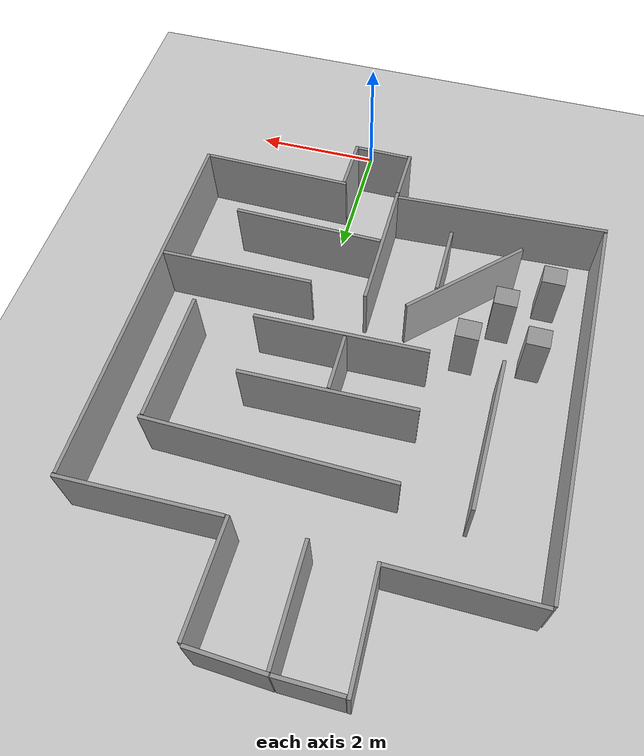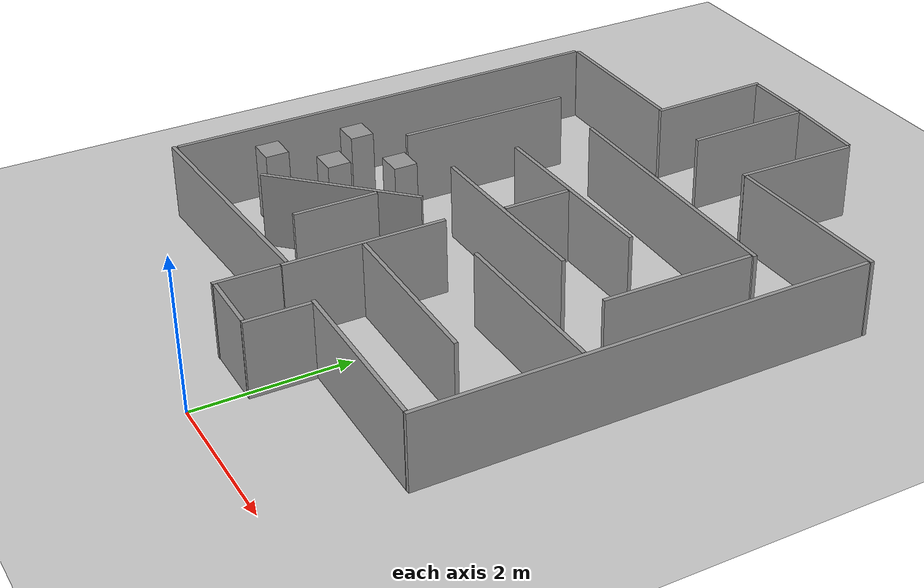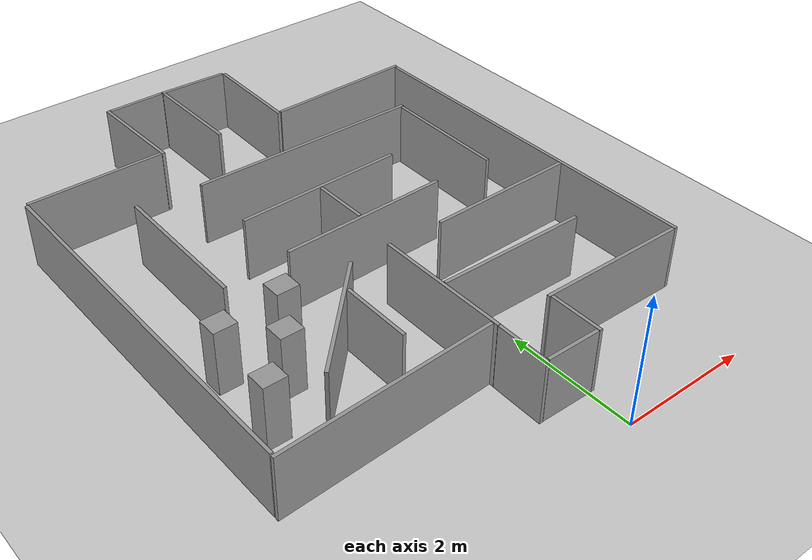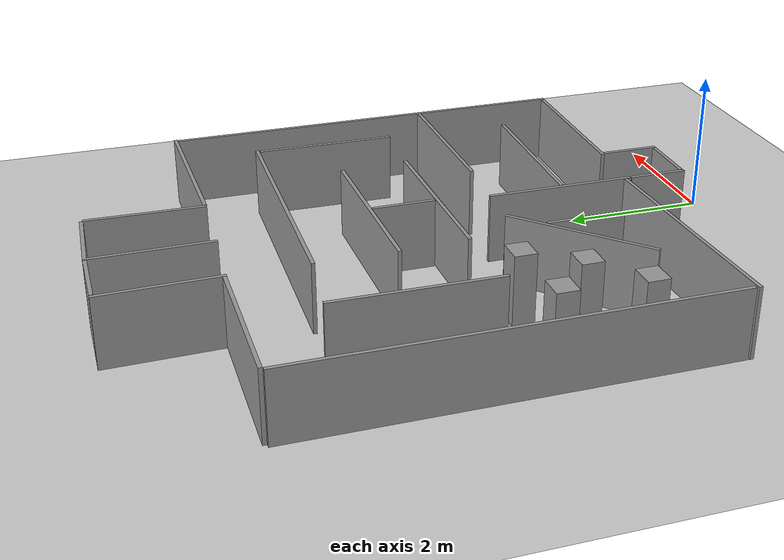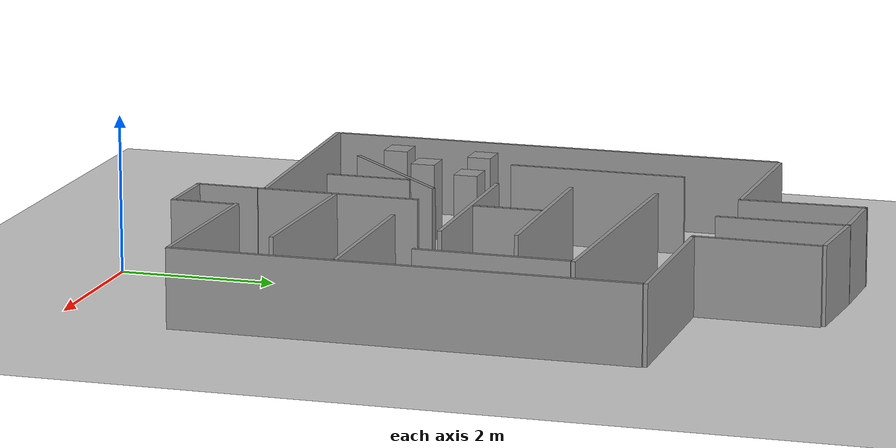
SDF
<sdf version="1.6">
 <world name="default">
  <light name="sun" type="directional">
   <pose>0 0 10 0 -0 0</pose>
   <diffuse>0.8 0.8 0.8 1</diffuse>
   <specular>0.1 0.1 0.1 1</specular>
   <attenuation>
    <range>1000</range>
    <constant>0.9</constant>
    <linear>0.01</linear>
    <quadratic>0.001</quadratic>
   </attenuation>
   <direction>-0.5 0.5 -1</direction>
  </light>
  <model name="ground_plane">
   <static>1</static>
   <link name="link">
    <collision name="collision">
     <geometry><plane><normal>0 0 1</normal><size>100 100</size></plane></geometry>
     <surface><friction><ode><mu>100</mu><mu2>50</mu2></ode></friction></surface>
    </collision>
    <visual name="visual">
     <cast_shadows>0</cast_shadows>
     <geometry><plane><normal>0 0 1</normal><size>100 100</size></plane></geometry>
     <material>
      <script><uri>file://media/materials/scripts/gazebo.material</uri><name>Gazebo/Grey</name></script>
     </material>
    </visual>
   </link>
  </model>
  <gravity>0 0 -9.8</gravity>
  <magnetic_field>6e-06 2.3e-05 -4.2e-05</magnetic_field>
  <atmosphere type="adiabatic"/>
  <physics name="default_physics" default="0" type="ode">
   <max_step_size>0.001</max_step_size>
   <real_time_factor>1</real_time_factor>
   <real_time_update_rate>1000</real_time_update_rate>
  </physics>
  <scene><ambient>0.4 0.4 0.4 1</ambient><background>0.7 0.7 0.7 1</background><shadows>1</shadows></scene>
  <spherical_coordinates>
   <surface_model>EARTH_WGS84</surface_model>
   <latitude_deg>0</latitude_deg>
   <longitude_deg>0</longitude_deg>
   <elevation>0</elevation>
   <heading_deg>0</heading_deg>
  </spherical_coordinates>
  <model name="unit_box_0">
   <pose>-1.02773 8.18581 0.5 0 -8e-06 0.00631</pose>
   <static>true</static>
   <link name="link">
    <inertial>
     <mass>1</mass>
     <inertia>
      <ixx>0.166667</ixx>
      <ixy>0</ixy>
      <ixz>0</ixz>
      <iyy>0.166667</iyy>
      <iyz>0</iyz>
      <izz>0.166667</izz>
     </inertia>
    </inertial>
    <collision name="collision"><geometry><box><size>0.0517235 1.62363 1</size></box></geometry></collision>
    <visual name="visual">
     <geometry><box><size>0.0517235 1.62363 1</size></box></geometry>
     <material>
      <script><name>Gazebo/Grey</name><uri>file://media/materials/scripts/gazebo.material</uri></script>
     </material>
    </visual>
   </link>
  </model>
  <model name="unit_box_0_clone">
   <pose>0.051503 8.14796 0.5 -0 -1e-06 -0.021205</pose>
   <static>true</static>
   <link name="link">
    <inertial>
     <mass>1</mass>
     <inertia>
      <ixx>0.166667</ixx>
      <ixy>0</ixy>
      <ixz>0</ixz>
      <iyy>0.166667</iyy>
      <iyz>0</iyz>
      <izz>0.166667</izz>
     </inertia>
    </inertial>
    <collision name="collision"><geometry><box><size>0.051723 1.62058 1</size></box></geometry></collision>
    <visual name="visual">
     <geometry><box><size>0.051723 1.62058 1</size></box></geometry>
     <material>
      <script><name>Gazebo/Grey</name><uri>file://media/materials/scripts/gazebo.material</uri></script>
     </material>
    </visual>
   </link>
  </model>
  <model name="unit_box_0_clone_0">
   <pose>-0.503452 9.00103 0.5 0 1e-06 -1.61578</pose>
   <static>true</static>
   <link name="link">
    <inertial>
     <mass>1</mass>
     <inertia>
      <ixx>0.166667</ixx>
      <ixy>0</ixy>
      <ixz>0</ixz>
      <iyy>0.166667</iyy>
      <iyz>0</iyz>
      <izz>0.166667</izz>
     </inertia>
    </inertial>
    <collision name="collision"><geometry><box><size>0.051723 1.09284 1</size></box></geometry></collision>
    <visual name="visual">
     <geometry><box><size>0.051723 1.09284 1</size></box></geometry>
     <material>
      <script><name>Gazebo/Grey</name><uri>file://media/materials/scripts/gazebo.material</uri></script>
     </material>
    </visual>
   </link>
  </model>
  <model name="unit_box_0_clone_1">
   <pose>1.25462 7.38022 0.499955 3.8e-05 -1e-06 1.5896</pose>
   <static>true</static>
   <link name="link">
    <inertial>
     <mass>1</mass>
     <inertia>
      <ixx>0.166667</ixx>
      <ixy>0</ixy>
      <ixz>0</ixz>
      <iyy>0.166667</iyy>
      <iyz>0</iyz>
      <izz>0.166667</izz>
     </inertia>
    </inertial>
    <collision name="collision"><geometry><box><size>0.051723 2.36857 1</size></box></geometry></collision>
    <visual name="visual">
     <geometry><box><size>0.051723 2.36857 1</size></box></geometry>
     <material>
      <script><name>Gazebo/Grey</name><uri>file://media/materials/scripts/gazebo.material</uri></script>
     </material>
    </visual>
   </link>
  </model>
  <model name="unit_box_0_clone_1_clone">
   <pose>-0.151244 6.34656 0.499515 -0.000265 -4e-06 1.55697</pose>
   <static>true</static>
   <link name="link">
    <inertial>
     <mass>1</mass>
     <inertia>
      <ixx>0.166667</ixx>
      <ixy>0</ixy>
      <ixz>0</ixz>
      <iyy>0.166667</iyy>
      <iyz>0</iyz>
      <izz>0.166667</izz>
     </inertia>
    </inertial>
    <collision name="collision"><geometry><box><size>0.051723 3.66122 1</size></box></geometry></collision>
    <visual name="visual">
     <geometry><box><size>0.051723 3.66122 1</size></box></geometry>
     <material>
      <script><name>Gazebo/Grey</name><uri>file://media/materials/scripts/gazebo.material</uri></script>
     </material>
    </visual>
   </link>
  </model>
  <model name="unit_box_0_clone_2">
   <pose>-1.98128 8.24209 0.5 0 6e-06 0.025697</pose>
   <static>true</static>
   <link name="link">
    <inertial>
     <mass>1</mass>
     <inertia>
      <ixx>0.166667</ixx>
      <ixy>0</ixy>
      <ixz>0</ixz>
      <iyy>0.166667</iyy>
      <iyz>0</iyz>
      <izz>0.166667</izz>
     </inertia>
    </inertial>
    <collision name="collision"><geometry><box><size>0.051723 1.62363 1</size></box></geometry></collision>
    <visual name="visual">
     <geometry><box><size>0.051723 1.62363 1</size></box></geometry>
     <material>
      <script><name>Gazebo/Grey</name><uri>file://media/materials/scripts/gazebo.material</uri></script>
     </material>
    </visual>
   </link>
  </model>
  <model name="unit_box_0_clone_0_clone">
   <pose>-1.51521 9.02595 0.5 0 -1e-06 -1.57348</pose>
   <static>true</static>
   <link name="link">
    <inertial>
     <mass>1</mass>
     <inertia>
      <ixx>0.166667</ixx>
      <ixy>0</ixy>
      <ixz>0</ixz>
      <iyy>0.166667</iyy>
      <iyz>0</iyz>
      <izz>0.166667</izz>
     </inertia>
    </inertial>
    <collision name="collision"><geometry><box><size>0.051723 0.90521 1</size></box></geometry></collision>
    <visual name="visual">
     <geometry><box><size>0.051723 0.90521 1</size></box></geometry>
     <material>
      <script><name>Gazebo/Grey</name><uri>file://media/materials/scripts/gazebo.material</uri></script>
     </material>
    </visual>
   </link>
  </model>
  <model name="unit_box_0_clone_0_clone_0">
   <pose>-3.04193 7.45942 0.499979 -2e-05 0 -1.57125</pose>
   <static>true</static>
   <link name="link">
    <inertial>
     <mass>1</mass>
     <inertia>
      <ixx>0.166667</ixx>
      <ixy>0</ixy>
      <ixz>0</ixz>
      <iyy>0.166667</iyy>
      <iyz>0</iyz>
      <izz>0.166667</izz>
     </inertia>
    </inertial>
    <collision name="collision"><geometry><box><size>0.051723 2.10827 1</size></box></geometry></collision>
    <visual name="visual">
     <geometry><box><size>0.051723 2.10827 1</size></box></geometry>
     <material>
      <script><name>Gazebo/Grey</name><uri>file://media/materials/scripts/gazebo.material</uri></script>
     </material>
    </visual>
   </link>
  </model>
  <model name="unit_box_0_clone_0_clone_0_clone">
   <pose>-2.96492 5.34252 0.499963 3.2e-05 1e-06 -0.011922</pose>
   <static>true</static>
   <link name="link">
    <inertial>
     <mass>1</mass>
     <inertia>
      <ixx>0.166667</ixx>
      <ixy>0</ixy>
      <ixz>0</ixz>
      <iyy>0.166667</iyy>
      <iyz>0</iyz>
      <izz>0.166667</izz>
     </inertia>
    </inertial>
    <collision name="collision"><geometry><box><size>0.051723 2.29133 1</size></box></geometry></collision>
    <visual name="visual">
     <geometry><box><size>0.051723 2.29133 1</size></box></geometry>
     <material>
      <script><name>Gazebo/Grey</name><uri>file://media/materials/scripts/gazebo.material</uri></script>
     </material>
    </visual>
   </link>
  </model>
  <model name="unit_box_0_clone_1_clone_clone">
   <pose>-0.686098 5.28959 0.499918 -6.3e-05 1e-06 1.58912</pose>
   <static>true</static>
   <link name="link">
    <inertial>
     <mass>1</mass>
     <inertia>
      <ixx>0.166667</ixx>
      <ixy>0</ixy>
      <ixz>0</ixz>
      <iyy>0.166667</iyy>
      <iyz>0</iyz>
      <izz>0.166667</izz>
     </inertia>
    </inertial>
    <collision name="collision"><geometry><box><size>0.051723 2.61621 1</size></box></geometry></collision>
    <visual name="visual">
     <geometry><box><size>0.051723 2.61621 1</size></box></geometry>
     <material>
      <script><name>Gazebo/Grey</name><uri>file://media/materials/scripts/gazebo.material</uri></script>
     </material>
    </visual>
   </link>
  </model>
  <model name="unit_box_0_clone_1_clone_clone_0">
   <pose>1.62685 5.30096 0.499987 -1.3e-05 -0 3.12977</pose>
   <static>true</static>
   <link name="link">
    <inertial>
     <mass>1</mass>
     <inertia>
      <ixx>0.166667</ixx>
      <ixy>0</ixy>
      <ixz>0</ixz>
      <iyy>0.166667</iyy>
      <iyz>0</iyz>
      <izz>0.166667</izz>
     </inertia>
    </inertial>
    <collision name="collision"><geometry><box><size>0.051723 1.96944 1</size></box></geometry></collision>
    <visual name="visual">
     <geometry><box><size>0.051723 1.96944 1</size></box></geometry>
     <material>
      <script><name>Gazebo/Grey</name><uri>file://media/materials/scripts/gazebo.material</uri></script>
     </material>
    </visual>
   </link>
  </model>
  <model name="unit_box_0_clone_1_clone_clone_1">
   <pose>2.41042 4.42765 0.49745 0.00087 0.000199 -3.14154</pose>
   <static>true</static>
   <link name="link">
    <inertial>
     <mass>1</mass>
     <inertia>
      <ixx>0.166667</ixx>
      <ixy>0</ixy>
      <ixz>0</ixz>
      <iyy>0.166667</iyy>
      <iyz>0</iyz>
      <izz>0.166667</izz>
     </inertia>
    </inertial>
    <collision name="collision"><geometry><box><size>0.051723 5.876 1</size></box></geometry></collision>
    <visual name="visual">
     <geometry><box><size>0.051723 5.876 1</size></box></geometry>
     <material>
      <script><name>Gazebo/Grey</name><uri>file://media/materials/scripts/gazebo.material</uri></script>
     </material>
    </visual>
   </link>
  </model>
  <model name="unit_box_0_clone_1_clone_clone_clone">
   <pose>-0.623483 4.34006 0.499918 -6.3e-05 1e-06 1.58912</pose>
   <static>true</static>
   <link name="link">
    <inertial>
     <mass>1</mass>
     <inertia>
      <ixx>0.166667</ixx>
      <ixy>0</ixy>
      <ixz>0</ixz>
      <iyy>0.166667</iyy>
      <iyz>0</iyz>
      <izz>0.166667</izz>
     </inertia>
    </inertial>
    <collision name="collision"><geometry><box><size>0.051723 2.61621 1</size></box></geometry></collision>
    <visual name="visual">
     <geometry><box><size>0.051723 2.61621 1</size></box></geometry>
     <material>
      <script><name>Gazebo/Grey</name><uri>file://media/materials/scripts/gazebo.material</uri></script>
     </material>
    </visual>
   </link>
  </model>
  <model name="unit_box_0_clone_1_clone_clone_clone_0">
   <pose>-0.697964 4.81402 0.5 -0 -1.1e-05 -3.13946</pose>
   <static>true</static>
   <link name="link">
    <inertial>
     <mass>1</mass>
     <inertia>
      <ixx>0.166667</ixx>
      <ixy>0</ixy>
      <ixz>0</ixz>
      <iyy>0.166667</iyy>
      <iyz>0</iyz>
      <izz>0.166667</izz>
     </inertia>
    </inertial>
    <collision name="collision"><geometry><box><size>0.051723 0.874825 1</size></box></geometry></collision>
    <visual name="visual">
     <geometry><box><size>0.051723 0.874825 1</size></box></geometry>
     <material>
      <script><name>Gazebo/Grey</name><uri>file://media/materials/scripts/gazebo.material</uri></script>
     </material>
    </visual>
   </link>
  </model>
  <model name="unit_box_0_clone_0_clone_0_clone_0">
   <pose>-4.11949 4.47519 0.499821 -6.3e-05 0.000301 1.2e-05</pose>
   <static>true</static>
   <link name="link">
    <inertial>
     <mass>1</mass>
     <inertia>
      <ixx>0.166667</ixx>
      <ixy>0</ixy>
      <ixz>0</ixz>
      <iyy>0.166667</iyy>
      <iyz>0</iyz>
      <izz>0.166667</izz>
     </inertia>
    </inertial>
    <collision name="collision"><geometry><box><size>0.051723 5.90567 1</size></box></geometry></collision>
    <visual name="visual">
     <geometry><box><size>0.051723 5.90567 1</size></box></geometry>
     <material>
      <script><name>Gazebo/Grey</name><uri>file://media/materials/scripts/gazebo.material</uri></script>
     </material>
    </visual>
   </link>
  </model>
  <model name="unit_box_0_clone_1_clone_clone_0_clone">
   <pose>1.2117 3.58889 0.499958 3.6e-05 -1e-06 1.58328</pose>
   <static>true</static>
   <link name="link">
    <inertial>
     <mass>1</mass>
     <inertia>
      <ixx>0.166667</ixx>
      <ixy>0</ixy>
      <ixz>0</ixz>
      <iyy>0.166667</iyy>
      <iyz>0</iyz>
      <izz>0.166667</izz>
     </inertia>
    </inertial>
    <collision name="collision"><geometry><box><size>0.051723 2.33566 1</size></box></geometry></collision>
    <visual name="visual">
     <geometry><box><size>0.051723 2.33566 1</size></box></geometry>
     <material>
      <script><name>Gazebo/Grey</name><uri>file://media/materials/scripts/gazebo.material</uri></script>
     </material>
    </visual>
   </link>
  </model>
  <model name="unit_box_0_clone_1_clone_clone_0_clone_clone">
   <pose>-0.806653 2.57831 0.49998 -1.9e-05 -0 3.13898</pose>
   <static>true</static>
   <link name="link">
    <inertial>
     <mass>1</mass>
     <inertia>
      <ixx>0.166667</ixx>
      <ixy>0</ixy>
      <ixz>0</ixz>
      <iyy>0.166667</iyy>
      <iyz>0</iyz>
      <izz>0.166667</izz>
     </inertia>
    </inertial>
    <collision name="collision"><geometry><box><size>0.051723 2.09659 1</size></box></geometry></collision>
    <visual name="visual">
     <geometry><box><size>0.051723 2.09659 1</size></box></geometry>
     <material>
      <script><name>Gazebo/Grey</name><uri>file://media/materials/scripts/gazebo.material</uri></script>
     </material>
    </visual>
   </link>
  </model>
  <model name="unit_box_0_clone_1_clone_clone_0_clone_clone_0">
   <pose>0.394957 2.53559 0.499958 3.6e-05 1e-06 1.55557</pose>
   <static>true</static>
   <link name="link">
    <inertial>
     <mass>1</mass>
     <inertia>
      <ixx>0.166667</ixx>
      <ixy>0</ixy>
      <ixz>0</ixz>
      <iyy>0.166667</iyy>
      <iyz>0</iyz>
      <izz>0.166667</izz>
     </inertia>
    </inertial>
    <collision name="collision"><geometry><box><size>0.051723 2.33565 1</size></box></geometry></collision>
    <visual name="visual">
     <geometry><box><size>0.051723 2.33565 1</size></box></geometry>
     <material>
      <script><name>Gazebo/Grey</name><uri>file://media/materials/scripts/gazebo.material</uri></script>
     </material>
    </visual>
   </link>
  </model>
  <model name="unit_box_0_clone_1_clone_clone_0_clone_clone_clone">
   <pose>-2.17476 2.89731 0.499995 -5e-06 -1e-06 2.35059</pose>
   <static>true</static>
   <link name="link">
    <inertial>
     <mass>1</mass>
     <inertia>
      <ixx>0.166667</ixx>
      <ixy>0</ixy>
      <ixz>0</ixz>
      <iyy>0.166667</iyy>
      <iyz>0</iyz>
      <izz>0.166667</izz>
     </inertia>
    </inertial>
    <collision name="collision"><geometry><box><size>0.051723 2.09659 1</size></box></geometry></collision>
    <visual name="visual">
     <geometry><box><size>0.051723 2.09659 1</size></box></geometry>
     <material>
      <script><name>Gazebo/Grey</name><uri>file://media/materials/scripts/gazebo.material</uri></script>
     </material>
    </visual>
   </link>
  </model>
  <model name="unit_box_0_clone_1_clone_clone_0_clone_clone_clone_clone">
   <pose>-1.80175 2.65816 0.5 0 -1.1e-05 3.13545</pose>
   <static>true</static>
   <link name="link">
    <inertial>
     <mass>1</mass>
     <inertia>
      <ixx>0.166667</ixx>
      <ixy>0</ixy>
      <ixz>0</ixz>
      <iyy>0.166667</iyy>
      <iyz>0</iyz>
      <izz>0.166667</izz>
     </inertia>
    </inertial>
    <collision name="collision"><geometry><box><size>0.051723 1.09827 1</size></box></geometry></collision>
    <visual name="visual">
     <geometry><box><size>0.051723 1.09827 1</size></box></geometry>
     <material>
      <script><name>Gazebo/Grey</name><uri>file://media/materials/scripts/gazebo.material</uri></script>
     </material>
    </visual>
   </link>
  </model>
  <model name="unit_box_0_clone_1_clone_clone_0_clone_clone_clone_0">
   <pose>-2.49474 1.54338 0.499709 0.000176 2e-06 1.61303</pose>
   <static>true</static>
   <link name="link">
    <inertial>
     <mass>1</mass>
     <inertia>
      <ixx>0.166667</ixx>
      <ixy>0</ixy>
      <ixz>0</ixz>
      <iyy>0.166667</iyy>
      <iyz>0</iyz>
      <izz>0.166667</izz>
     </inertia>
    </inertial>
    <collision name="collision"><geometry><box><size>0.051723 3.30825 1</size></box></geometry></collision>
    <visual name="visual">
     <geometry><box><size>0.051723 3.30825 1</size></box></geometry>
     <material>
      <script><name>Gazebo/Grey</name><uri>file://media/materials/scripts/gazebo.material</uri></script>
     </material>
    </visual>
   </link>
  </model>
  <model name="unit_box_1">
   <pose>-2.39159 3.80906 0.5 -1e-06 2e-06 -0.000287</pose>
   <static>true</static>
   <link name="link">
    <inertial>
     <mass>1</mass>
     <inertia>
      <ixx>0.166667</ixx>
      <ixy>0</ixy>
      <ixz>0</ixz>
      <iyy>0.166667</iyy>
      <iyz>0</iyz>
      <izz>0.166667</izz>
     </inertia>
    </inertial>
    <collision name="collision"><geometry><box><size>0.350469 0.310624 1</size></box></geometry></collision>
    <visual name="visual">
     <geometry><box><size>0.350469 0.310624 1</size></box></geometry>
     <material>
      <script><name>Gazebo/Grey</name><uri>file://media/materials/scripts/gazebo.material</uri></script>
     </material>
    </visual>
   </link>
  </model>
  <model name="unit_box_1_clone">
   <pose>-3.3986 3.68536 0.5 0 3e-06 -0.000272</pose>
   <static>true</static>
   <link name="link">
    <inertial>
     <mass>1</mass>
     <inertia>
      <ixx>0.166667</ixx>
      <ixy>0</ixy>
      <ixz>0</ixz>
      <iyy>0.166667</iyy>
      <iyz>0</iyz>
      <izz>0.166667</izz>
     </inertia>
    </inertial>
    <collision name="collision"><geometry><box><size>0.350469 0.310624 1</size></box></geometry></collision>
    <visual name="visual">
     <geometry><box><size>0.350469 0.310624 1</size></box></geometry>
     <material>
      <script><name>Gazebo/Grey</name><uri>file://media/materials/scripts/gazebo.material</uri></script>
     </material>
    </visual>
   </link>
  </model>
  <model name="unit_box_1_clone_0">
   <pose>-3.46804 2.53854 0.5 0 -3e-06 -0.00032</pose>
   <static>true</static>
   <link name="link">
    <inertial>
     <mass>1</mass>
     <inertia>
      <ixx>0.166667</ixx>
      <ixy>0</ixy>
      <ixz>0</ixz>
      <iyy>0.166667</iyy>
      <iyz>0</iyz>
      <izz>0.166667</izz>
     </inertia>
    </inertial>
    <collision name="collision"><geometry><box><size>0.350469 0.310624 1</size></box></geometry></collision>
    <visual name="visual">
     <geometry><box><size>0.350469 0.310624 1</size></box></geometry>
     <material>
      <script><name>Gazebo/Grey</name><uri>file://media/materials/scripts/gazebo.material</uri></script>
     </material>
    </visual>
   </link>
  </model>
  <model name="unit_box_1_clone_1">
   <pose>-2.83225 3.10322 0.499999 2e-06 -3e-06 -0.000122</pose>
   <static>true</static>
   <link name="link">
    <inertial>
     <mass>1</mass>
     <inertia>
      <ixx>0.166667</ixx>
      <ixy>0</ixy>
      <ixz>0</ixz>
      <iyy>0.166667</iyy>
      <iyz>0</iyz>
      <izz>0.166667</izz>
     </inertia>
    </inertial>
    <collision name="collision"><geometry><box><size>0.350469 0.310624 1</size></box></geometry></collision>
    <visual name="visual">
     <geometry><box><size>0.350469 0.310624 1</size></box></geometry>
     <material>
      <script><name>Gazebo/Grey</name><uri>file://media/materials/scripts/gazebo.material</uri></script>
     </material>
    </visual>
   </link>
  </model>
  <model name="unit_box_0_clone_1_clone_clone_0_clone_clone_0_clone">
   <pose>1.21203 1.52981 0.499958 3.6e-05 1e-06 1.55557</pose>
   <static>true</static>
   <link name="link">
    <inertial>
     <mass>1</mass>
     <inertia>
      <ixx>0.166667</ixx>
      <ixy>0</ixy>
      <ixz>0</ixz>
      <iyy>0.166667</iyy>
      <iyz>0</iyz>
      <izz>0.166667</izz>
     </inertia>
    </inertial>
    <collision name="collision"><geometry><box><size>0.051723 2.33565 1</size></box></geometry></collision>
    <visual name="visual">
     <geometry><box><size>0.051723 2.33565 1</size></box></geometry>
     <material>
      <script><name>Gazebo/Grey</name><uri>file://media/materials/scripts/gazebo.material</uri></script>
     </material>
    </visual>
   </link>
  </model>
  <model name="unit_box_0_clone_1_clone_clone_0_clone_clone_0_clone_0">
   <pose>-0.372906 0.724438 0.5 0 -8e-06 1.55838</pose>
   <static>true</static>
   <link name="link">
    <inertial>
     <mass>1</mass>
     <inertia>
      <ixx>0.166667</ixx>
      <ixy>0</ixy>
      <ixz>0</ixz>
      <iyy>0.166667</iyy>
      <iyz>0</iyz>
      <izz>0.166667</izz>
     </inertia>
    </inertial>
    <collision name="collision"><geometry><box><size>0.051723 0.832652 1</size></box></geometry></collision>
    <visual name="visual">
     <geometry><box><size>0.051723 0.832652 1</size></box></geometry>
     <material>
      <script><name>Gazebo/Grey</name><uri>file://media/materials/scripts/gazebo.material</uri></script>
     </material>
    </visual>
   </link>
  </model>
  <model name="unit_box_0_clone_1_clone_clone_0_clone_clone_0_clone_0_clone">
   <pose>0.078985 1.10532 0.49999 0 1e-06 -0.012385</pose>
   <static>true</static>
   <link name="link">
    <inertial>
     <mass>1</mass>
     <inertia>
      <ixx>0.166667</ixx>
      <ixy>0</ixy>
      <ixz>0</ixz>
      <iyy>0.166667</iyy>
      <iyz>0</iyz>
      <izz>0.166667</izz>
     </inertia>
    </inertial>
    <collision name="collision"><geometry><box><size>0.051723 0.821542 1</size></box></geometry></collision>
    <visual name="visual">
     <geometry><box><size>0.051723 0.821542 1</size></box></geometry>
     <material>
      <script><name>Gazebo/Grey</name><uri>file://media/materials/scripts/gazebo.material</uri></script>
     </material>
    </visual>
   </link>
  </model>
  <model name="unit_box_0_clone_1_clone_clone_0_clone_clone_0_clone_0_clone_clone">
   <pose>-0.817541 1.11104 0.5 0 -4e-06 -0.01243</pose>
   <static>true</static>
   <link name="link">
    <inertial>
     <mass>1</mass>
     <inertia>
      <ixx>0.166667</ixx>
      <ixy>0</ixy>
      <ixz>0</ixz>
      <iyy>0.166667</iyy>
      <iyz>0</iyz>
      <izz>0.166667</izz>
     </inertia>
    </inertial>
    <collision name="collision"><geometry><box><size>0.051723 0.821542 1</size></box></geometry></collision>
    <visual name="visual">
     <geometry><box><size>0.051723 0.821542 1</size></box></geometry>
     <material>
      <script><name>Gazebo/Grey</name><uri>file://media/materials/scripts/gazebo.material</uri></script>
     </material>
    </visual>
   </link>
  </model>
 </world>
</sdf>
